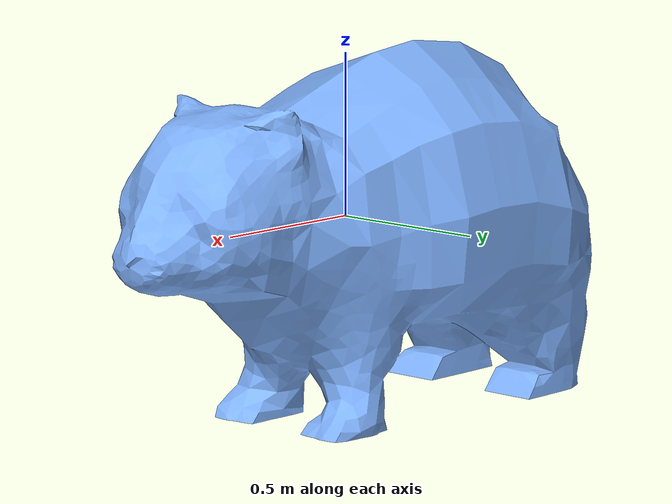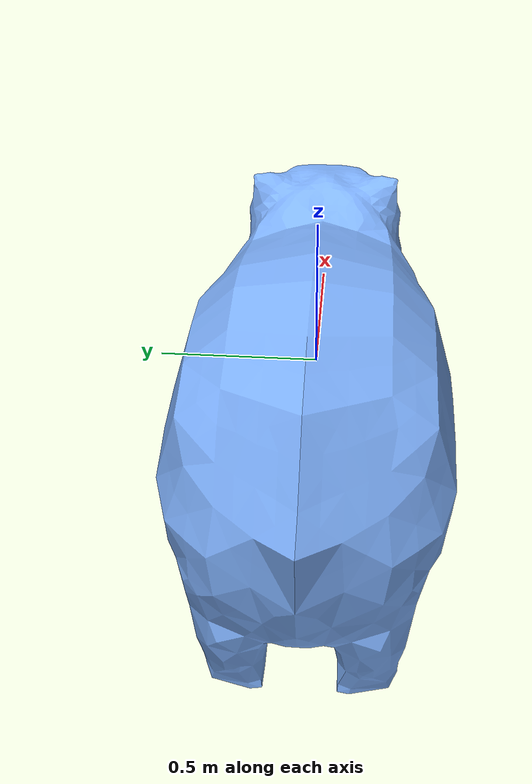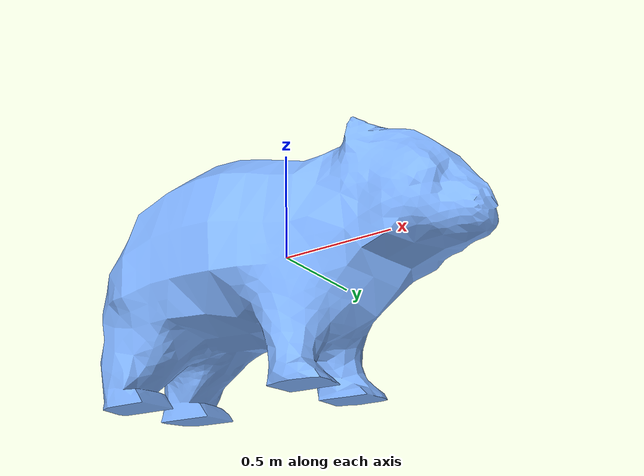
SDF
<?xml version="1.0" ?>
<sdf version="1.9">
  <model name="wombat1">
    <pose>0 0 0 0 0 0</pose>
    <link name="body">
      <inertial>
        <mass>5.0</mass>
        <inertia>
          <ixx>0.1</ixx>
          <iyy>0.1</iyy>
          <izz>0.1</izz>
        </inertia>
      </inertial>

      <collision name="collision">
        <geometry>
          <mesh>
            <uri>package://install/41068_ignition_bringup/share/41068_ignition_bringup/models/wombat/wombat.dae</uri>
            <scale>0.5 0.5 0.5</scale>
          </mesh>
        </geometry>
      </collision>

      <visual name="visual">
        <geometry>
          <mesh>
            <uri>package://install/41068_ignition_bringup/share/41068_ignition_bringup/models/wombat/wombat.dae</uri>
            <scale>0.5 0.5 0.5</scale>
          </mesh>
        </geometry>
        <material>
          <ambient>0.5 0.7 1.0 1</ambient>
          <diffuse>0.5 0.7 1.0 1</diffuse>
          <specular>0.1 0.1 0.1 1</specular>
        </material>
      </visual>
    </link>
  </model>
</sdf>
